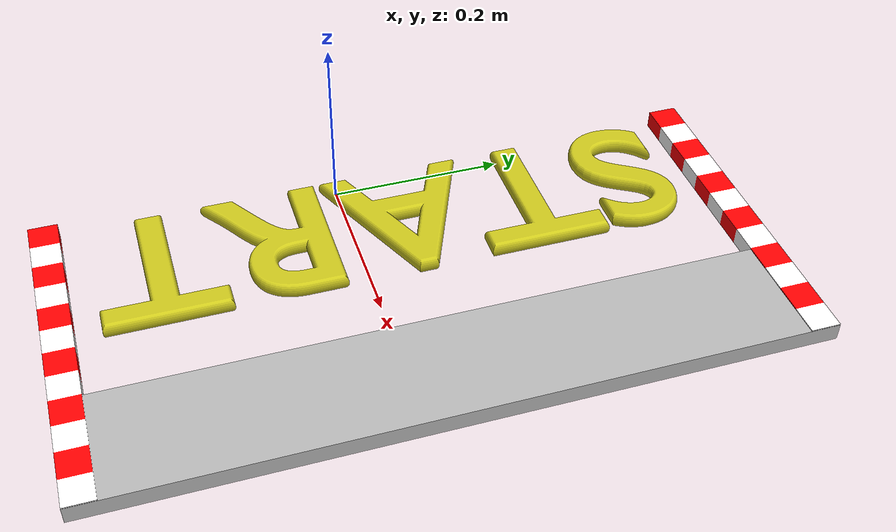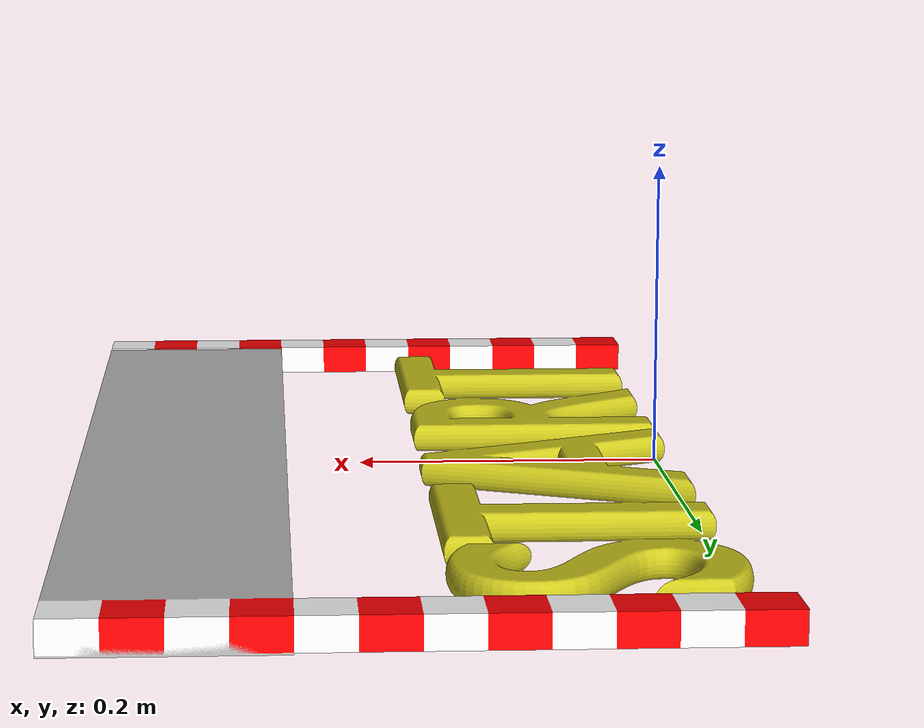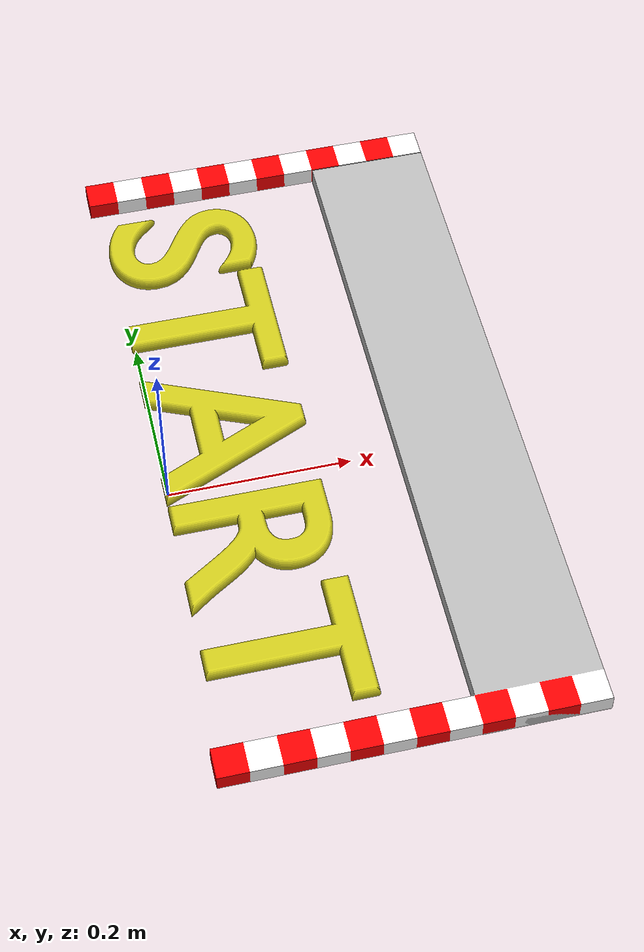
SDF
<?xml version="1.0" ?>
<sdf version='1.5'>
<model name='start_line_mini'>
<static>true</static>
<link name="link">
  <pose frame=''>0 0 0.01 0 0 0</pose>
  <visual name='finishV'>
    <cast_shadows>false</cast_shadows>
    <geometry>
      <mesh>
        <scale>1.0 1.0 1.0</scale>
        <uri>model://start_line_mini/start_line_mini2.dae</uri>
      </mesh>
    </geometry>
    <material>
      <script>
        <name>start_line_mini</name>
        <uri>model://start_line_mini/start_line_mini2.dae</uri>
      </script>
    </material>
  </visual>
</link>
</model>
</sdf>
